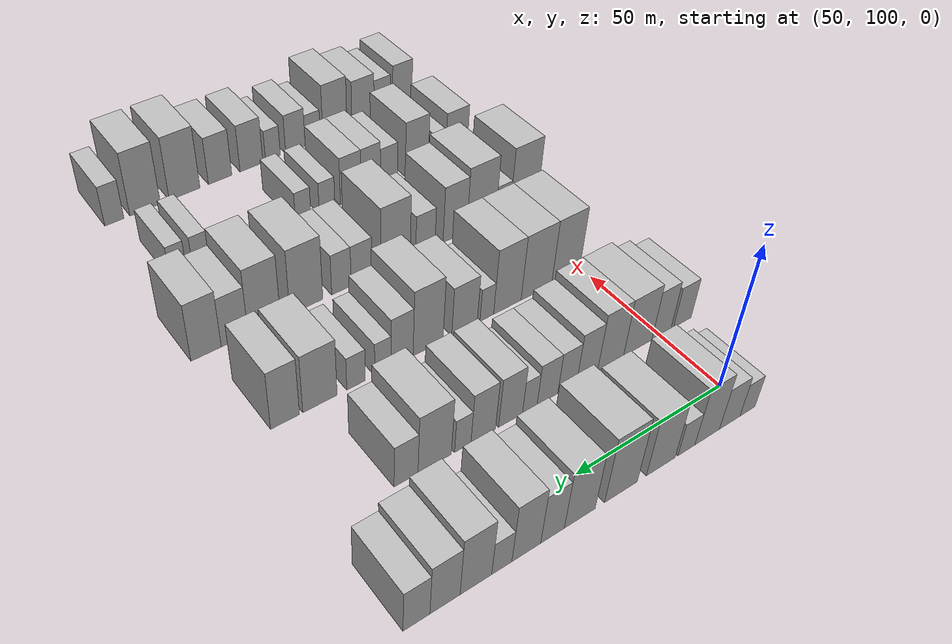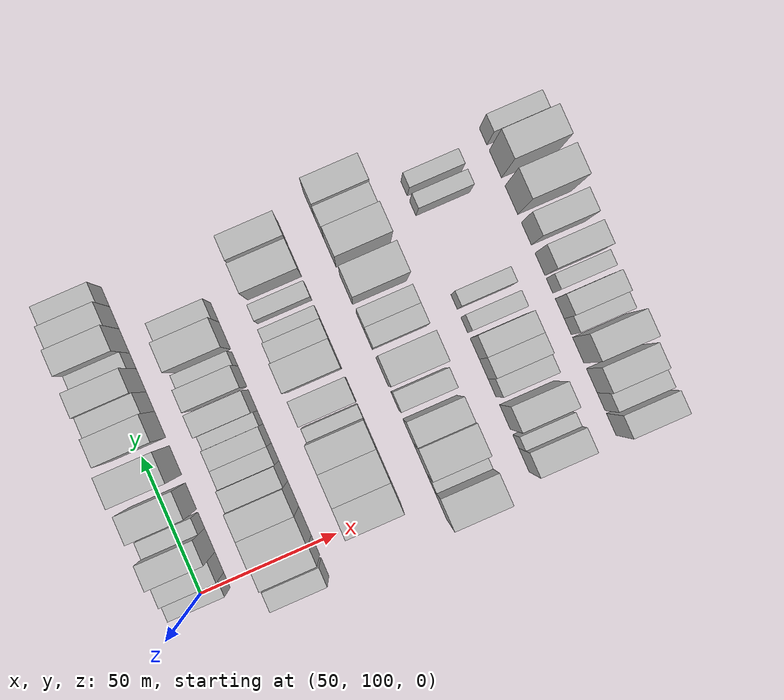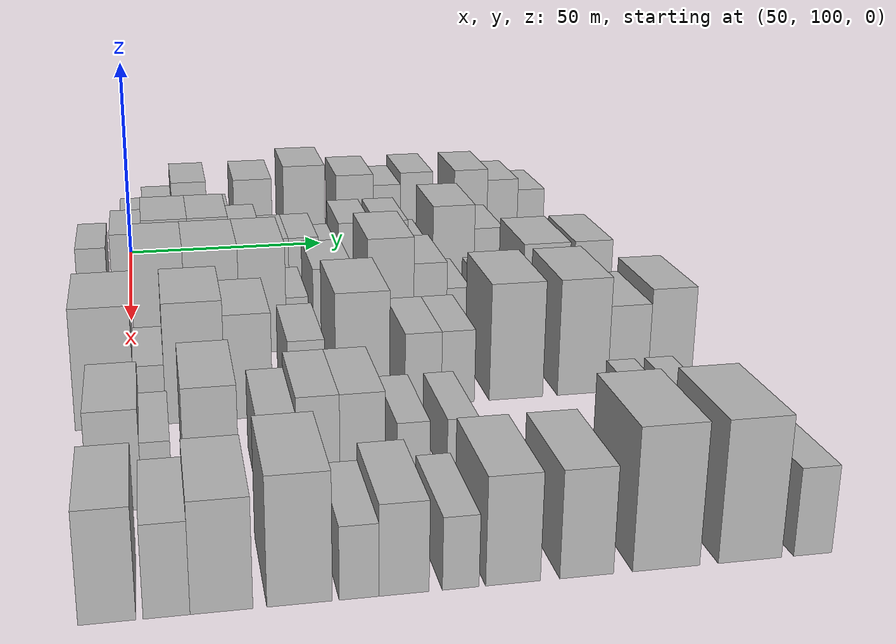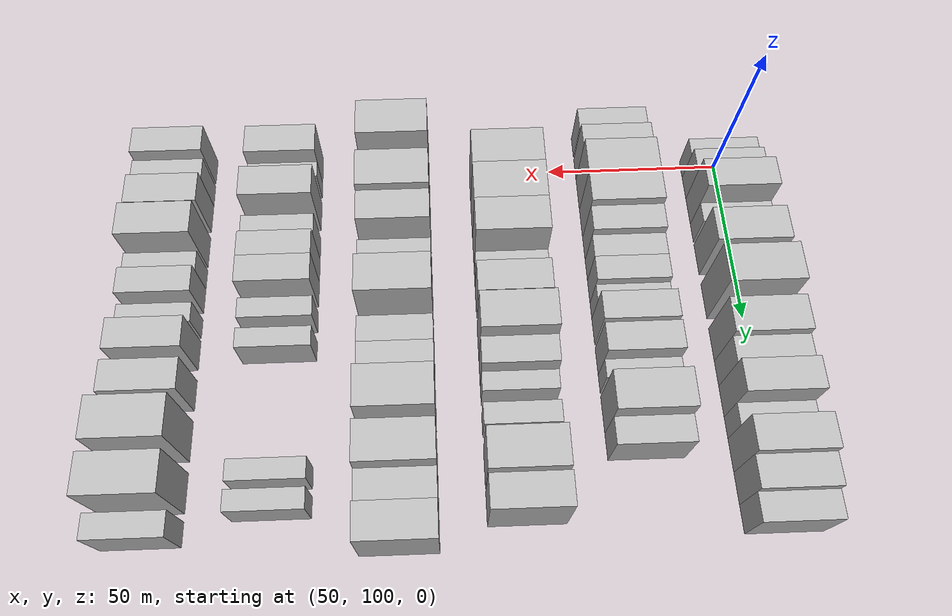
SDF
<sdf version="1.6">
 <world name="default">
  <model name="building_71">
   <static>1</static>
   <pose>50.0000 100.6009 0 0.000000 0.000000 0.000000</pose>
   <link name="link">
    <pose>0 0 6.00 0 0 0</pose>
    <collision name="collision"><geometry><box><size>20.0000 5.6024 12.0000</size></box></geometry></collision>
    <visual name="visual">
     <cast_shadows>0</cast_shadows>
     <geometry><box><size>20.0000 5.6024 12.0000</size></box></geometry>
     <material>
      <script>
       <uri>model://HANNAS_wall/materials/scripts</uri>
       <uri>model://HANNAS_wall/materials/textures</uri>
       <name>vrc/HANNAS_wall</name>
      </script>
     </material>
    </visual>
   </link>
  </model>
  <model name="building_72">
   <static>1</static>
   <pose>50.0000 107.1338 0 0.000000 0.000000 0.000000</pose>
   <link name="link">
    <pose>0 0 7.50 0 0 0</pose>
    <collision name="collision"><geometry><box><size>20.0000 7.4633 15.0000</size></box></geometry></collision>
    <visual name="visual">
     <cast_shadows>0</cast_shadows>
     <geometry><box><size>20.0000 7.4633 15.0000</size></box></geometry>
     <material>
      <script>
       <uri>model://HANNAS_wall/materials/scripts</uri>
       <uri>model://HANNAS_wall/materials/textures</uri>
       <name>vrc/HANNAS_wall</name>
      </script>
     </material>
    </visual>
   </link>
  </model>
  <model name="building_73">
   <static>1</static>
   <pose>50.0000 115.2234 0 0.000000 0.000000 0.000000</pose>
   <link name="link">
    <pose>0 0 10.50 0 0 0</pose>
    <collision name="collision"><geometry><box><size>20.0000 8.7159 21.0000</size></box></geometry></collision>
    <visual name="visual">
     <cast_shadows>0</cast_shadows>
     <geometry><box><size>20.0000 8.7159 21.0000</size></box></geometry>
     <material>
      <script>
       <uri>model://HANNAS_wall/materials/scripts</uri>
       <uri>model://HANNAS_wall/materials/textures</uri>
       <name>vrc/HANNAS_wall</name>
      </script>
     </material>
    </visual>
   </link>
  </model>
  <model name="building_74">
   <static>1</static>
   <pose>50.0000 122.5239 0 0.000000 0.000000 0.000000</pose>
   <link name="link">
    <pose>0 0 6.00 0 0 0</pose>
    <collision name="collision"><geometry><box><size>20.0000 5.8850 12.0000</size></box></geometry></collision>
    <visual name="visual">
     <cast_shadows>0</cast_shadows>
     <geometry><box><size>20.0000 5.8850 12.0000</size></box></geometry>
     <material>
      <script>
       <uri>model://HANNAS_wall/materials/scripts</uri>
       <uri>model://HANNAS_wall/materials/textures</uri>
       <name>vrc/HANNAS_wall</name>
      </script>
     </material>
    </visual>
   </link>
  </model>
  <model name="building_75">
   <static>1</static>
   <pose>50.0000 131.3342 0 0.000000 0.000000 0.000000</pose>
   <link name="link">
    <pose>0 0 10.50 0 0 0</pose>
    <collision name="collision"><geometry><box><size>20.0000 9.7356 21.0000</size></box></geometry></collision>
    <visual name="visual">
     <cast_shadows>0</cast_shadows>
     <geometry><box><size>20.0000 9.7356 21.0000</size></box></geometry>
     <material>
      <script>
       <uri>model://HANNAS_wall/materials/scripts</uri>
       <uri>model://HANNAS_wall/materials/textures</uri>
       <name>vrc/HANNAS_wall</name>
      </script>
     </material>
    </visual>
   </link>
  </model>
  <model name="building_76">
   <static>1</static>
   <pose>50.0000 144.5357 0 0.000000 0.000000 0.000000</pose>
   <link name="link">
    <pose>0 0 12.00 0 0 0</pose>
    <collision name="collision"><geometry><box><size>20.0000 10.6673 24.0000</size></box></geometry></collision>
    <visual name="visual">
     <cast_shadows>0</cast_shadows>
     <geometry><box><size>20.0000 10.6673 24.0000</size></box></geometry>
     <material>
      <script>
       <uri>model://HANNAS_wall/materials/scripts</uri>
       <uri>model://HANNAS_wall/materials/textures</uri>
       <name>vrc/HANNAS_wall</name>
      </script>
     </material>
    </visual>
   </link>
  </model>
  <model name="building_77">
   <static>1</static>
   <pose>50.0000 157.7000 0 0.000000 0.000000 0.000000</pose>
   <link name="link">
    <pose>0 0 10.50 0 0 0</pose>
    <collision name="collision"><geometry><box><size>20.0000 9.6613 21.0000</size></box></geometry></collision>
    <visual name="visual">
     <cast_shadows>0</cast_shadows>
     <geometry><box><size>20.0000 9.6613 21.0000</size></box></geometry>
     <material>
      <script>
       <uri>model://HANNAS_wall/materials/scripts</uri>
       <uri>model://HANNAS_wall/materials/textures</uri>
       <name>vrc/HANNAS_wall</name>
      </script>
     </material>
    </visual>
   </link>
  </model>
  <model name="building_78">
   <static>1</static>
   <pose>50.0000 166.1319 0 0.000000 0.000000 0.000000</pose>
   <link name="link">
    <pose>0 0 9.00 0 0 0</pose>
    <collision name="collision"><geometry><box><size>20.0000 7.2026 18.0000</size></box></geometry></collision>
    <visual name="visual">
     <cast_shadows>0</cast_shadows>
     <geometry><box><size>20.0000 7.2026 18.0000</size></box></geometry>
     <material>
      <script>
       <uri>model://HANNAS_wall/materials/scripts</uri>
       <uri>model://HANNAS_wall/materials/textures</uri>
       <name>vrc/HANNAS_wall</name>
      </script>
     </material>
    </visual>
   </link>
  </model>
  <model name="building_79">
   <static>1</static>
   <pose>50.0000 174.0043 0 0.000000 0.000000 0.000000</pose>
   <link name="link">
    <pose>0 0 10.50 0 0 0</pose>
    <collision name="collision"><geometry><box><size>20.0000 8.5422 21.0000</size></box></geometry></collision>
    <visual name="visual">
     <cast_shadows>0</cast_shadows>
     <geometry><box><size>20.0000 8.5422 21.0000</size></box></geometry>
     <material>
      <script>
       <uri>model://HANNAS_wall/materials/scripts</uri>
       <uri>model://HANNAS_wall/materials/textures</uri>
       <name>vrc/HANNAS_wall</name>
      </script>
     </material>
    </visual>
   </link>
  </model>
  <model name="building_80">
   <static>1</static>
   <pose>50.0000 181.2008 0 0.000000 0.000000 0.000000</pose>
   <link name="link">
    <pose>0 0 6.00 0 0 0</pose>
    <collision name="collision"><geometry><box><size>20.0000 5.8506 12.0000</size></box></geometry></collision>
    <visual name="visual">
     <cast_shadows>0</cast_shadows>
     <geometry><box><size>20.0000 5.8506 12.0000</size></box></geometry>
     <material>
      <script>
       <uri>model://HANNAS_wall/materials/scripts</uri>
       <uri>model://HANNAS_wall/materials/textures</uri>
       <name>vrc/HANNAS_wall</name>
      </script>
     </material>
    </visual>
   </link>
  </model>
  <model name="building_81">
   <static>1</static>
   <pose>50.0000 188.6041 0 0.000000 0.000000 0.000000</pose>
   <link name="link">
    <pose>0 0 10.50 0 0 0</pose>
    <collision name="collision"><geometry><box><size>20.0000 8.9559 21.0000</size></box></geometry></collision>
    <visual name="visual">
     <cast_shadows>0</cast_shadows>
     <geometry><box><size>20.0000 8.9559 21.0000</size></box></geometry>
     <material>
      <script>
       <uri>model://HANNAS_wall/materials/scripts</uri>
       <uri>model://HANNAS_wall/materials/textures</uri>
       <name>vrc/HANNAS_wall</name>
      </script>
     </material>
    </visual>
   </link>
  </model>
  <model name="building_82">
   <static>1</static>
   <pose>50.0000 197.2215 0 0.000000 0.000000 0.000000</pose>
   <link name="link">
    <pose>0 0 9.00 0 0 0</pose>
    <collision name="collision"><geometry><box><size>20.0000 8.2790 18.0000</size></box></geometry></collision>
    <visual name="visual">
     <cast_shadows>0</cast_shadows>
     <geometry><box><size>20.0000 8.2790 18.0000</size></box></geometry>
     <material>
      <script>
       <uri>model://HANNAS_wall/materials/scripts</uri>
       <uri>model://HANNAS_wall/materials/textures</uri>
       <name>vrc/HANNAS_wall</name>
      </script>
     </material>
    </visual>
   </link>
  </model>
  <model name="building_83">
   <static>1</static>
   <pose>50.0000 204.9760 0 0.000000 0.000000 0.000000</pose>
   <link name="link">
    <pose>0 0 7.50 0 0 0</pose>
    <collision name="collision"><geometry><box><size>20.0000 7.2300 15.0000</size></box></geometry></collision>
    <visual name="visual">
     <cast_shadows>0</cast_shadows>
     <geometry><box><size>20.0000 7.2300 15.0000</size></box></geometry>
     <material>
      <script>
       <uri>model://HANNAS_wall/materials/scripts</uri>
       <uri>model://HANNAS_wall/materials/textures</uri>
       <name>vrc/HANNAS_wall</name>
      </script>
     </material>
    </visual>
   </link>
  </model>
  <model name="building_190">
   <static>1</static>
   <pose>82.0000 91.4594 0 0.000000 0.000000 0.000000</pose>
   <link name="link">
    <pose>0 0 7.50 0 0 0</pose>
    <collision name="collision"><geometry><box><size>20.0000 6.8275 15.0000</size></box></geometry></collision>
    <visual name="visual">
     <cast_shadows>0</cast_shadows>
     <geometry><box><size>20.0000 6.8275 15.0000</size></box></geometry>
     <material>
      <script>
       <uri>model://HANNAS_wall/materials/scripts</uri>
       <uri>model://HANNAS_wall/materials/textures</uri>
       <name>vrc/HANNAS_wall</name>
      </script>
     </material>
    </visual>
   </link>
  </model>
  <model name="building_191">
   <static>1</static>
   <pose>82.0000 99.4900 0 0.000000 0.000000 0.000000</pose>
   <link name="link">
    <pose>0 0 9.00 0 0 0</pose>
    <collision name="collision"><geometry><box><size>20.0000 7.2338 18.0000</size></box></geometry></collision>
    <visual name="visual">
     <cast_shadows>0</cast_shadows>
     <geometry><box><size>20.0000 7.2338 18.0000</size></box></geometry>
     <material>
      <script>
       <uri>model://HANNAS_wall/materials/scripts</uri>
       <uri>model://HANNAS_wall/materials/textures</uri>
       <name>vrc/HANNAS_wall</name>
      </script>
     </material>
    </visual>
   </link>
  </model>
  <model name="building_192">
   <static>1</static>
   <pose>82.0000 108.3492 0 0.000000 0.000000 0.000000</pose>
   <link name="link">
    <pose>0 0 10.50 0 0 0</pose>
    <collision name="collision"><geometry><box><size>20.0000 10.4845 21.0000</size></box></geometry></collision>
    <visual name="visual">
     <cast_shadows>0</cast_shadows>
     <geometry><box><size>20.0000 10.4845 21.0000</size></box></geometry>
     <material>
      <script>
       <uri>model://HANNAS_wall/materials/scripts</uri>
       <uri>model://HANNAS_wall/materials/textures</uri>
       <name>vrc/HANNAS_wall</name>
      </script>
     </material>
    </visual>
   </link>
  </model>
  <model name="building_193">
   <static>1</static>
   <pose>82.0000 118.2571 0 0.000000 0.000000 0.000000</pose>
   <link name="link">
    <pose>0 0 10.50 0 0 0</pose>
    <collision name="collision"><geometry><box><size>20.0000 9.3312 21.0000</size></box></geometry></collision>
    <visual name="visual">
     <cast_shadows>0</cast_shadows>
     <geometry><box><size>20.0000 9.3312 21.0000</size></box></geometry>
     <material>
      <script>
       <uri>model://HANNAS_wall/materials/scripts</uri>
       <uri>model://HANNAS_wall/materials/textures</uri>
       <name>vrc/HANNAS_wall</name>
      </script>
     </material>
    </visual>
   </link>
  </model>
  <model name="building_194">
   <static>1</static>
   <pose>82.0000 126.6278 0 0.000000 0.000000 0.000000</pose>
   <link name="link">
    <pose>0 0 9.00 0 0 0</pose>
    <collision name="collision"><geometry><box><size>20.0000 7.4101 18.0000</size></box></geometry></collision>
    <visual name="visual">
     <cast_shadows>0</cast_shadows>
     <geometry><box><size>20.0000 7.4101 18.0000</size></box></geometry>
     <material>
      <script>
       <uri>model://HANNAS_wall/materials/scripts</uri>
       <uri>model://HANNAS_wall/materials/textures</uri>
       <name>vrc/HANNAS_wall</name>
      </script>
     </material>
    </visual>
   </link>
  </model>
  <model name="building_195">
   <static>1</static>
   <pose>82.0000 133.6002 0 0.000000 0.000000 0.000000</pose>
   <link name="link">
    <pose>0 0 7.50 0 0 0</pose>
    <collision name="collision"><geometry><box><size>20.0000 6.5347 15.0000</size></box></geometry></collision>
    <visual name="visual">
     <cast_shadows>0</cast_shadows>
     <geometry><box><size>20.0000 6.5347 15.0000</size></box></geometry>
     <material>
      <script>
       <uri>model://HANNAS_wall/materials/scripts</uri>
       <uri>model://HANNAS_wall/materials/textures</uri>
       <name>vrc/HANNAS_wall</name>
      </script>
     </material>
    </visual>
   </link>
  </model>
  <model name="building_196">
   <static>1</static>
   <pose>82.0000 140.3643 0 0.000000 0.000000 0.000000</pose>
   <link name="link">
    <pose>0 0 7.50 0 0 0</pose>
    <collision name="collision"><geometry><box><size>20.0000 6.9936 15.0000</size></box></geometry></collision>
    <visual name="visual">
     <cast_shadows>0</cast_shadows>
     <geometry><box><size>20.0000 6.9936 15.0000</size></box></geometry>
     <material>
      <script>
       <uri>model://HANNAS_wall/materials/scripts</uri>
       <uri>model://HANNAS_wall/materials/textures</uri>
       <name>vrc/HANNAS_wall</name>
      </script>
     </material>
    </visual>
   </link>
  </model>
  <model name="building_197">
   <static>1</static>
   <pose>82.0000 146.3003 0 0.000000 0.000000 0.000000</pose>
   <link name="link">
    <pose>0 0 6.00 0 0 0</pose>
    <collision name="collision"><geometry><box><size>20.0000 4.8784 12.0000</size></box></geometry></collision>
    <visual name="visual">
     <cast_shadows>0</cast_shadows>
     <geometry><box><size>20.0000 4.8784 12.0000</size></box></geometry>
     <material>
      <script>
       <uri>model://HANNAS_wall/materials/scripts</uri>
       <uri>model://HANNAS_wall/materials/textures</uri>
       <name>vrc/HANNAS_wall</name>
      </script>
     </material>
    </visual>
   </link>
  </model>
  <model name="building_198">
   <static>1</static>
   <pose>82.0000 152.6381 0 0.000000 0.000000 0.000000</pose>
   <link name="link">
    <pose>0 0 9.00 0 0 0</pose>
    <collision name="collision"><geometry><box><size>20.0000 7.7972 18.0000</size></box></geometry></collision>
    <visual name="visual">
     <cast_shadows>0</cast_shadows>
     <geometry><box><size>20.0000 7.7972 18.0000</size></box></geometry>
     <material>
      <script>
       <uri>model://HANNAS_wall/materials/scripts</uri>
       <uri>model://HANNAS_wall/materials/textures</uri>
       <name>vrc/HANNAS_wall</name>
      </script>
     </material>
    </visual>
   </link>
  </model>
  <model name="building_199">
   <static>1</static>
   <pose>82.0000 161.4354 0 0.000000 0.000000 0.000000</pose>
   <link name="link">
    <pose>0 0 9.00 0 0 0</pose>
    <collision name="collision"><geometry><box><size>20.0000 7.7974 18.0000</size></box></geometry></collision>
    <visual name="visual">
     <cast_shadows>0</cast_shadows>
     <geometry><box><size>20.0000 7.7974 18.0000</size></box></geometry>
     <material>
      <script>
       <uri>model://HANNAS_wall/materials/scripts</uri>
       <uri>model://HANNAS_wall/materials/textures</uri>
       <name>vrc/HANNAS_wall</name>
      </script>
     </material>
    </visual>
   </link>
  </model>
  <model name="building_200">
   <static>1</static>
   <pose>82.0000 167.8939 0 0.000000 0.000000 0.000000</pose>
   <link name="link">
    <pose>0 0 6.00 0 0 0</pose>
    <collision name="collision"><geometry><box><size>20.0000 5.1197 12.0000</size></box></geometry></collision>
    <visual name="visual">
     <cast_shadows>0</cast_shadows>
     <geometry><box><size>20.0000 5.1197 12.0000</size></box></geometry>
     <material>
      <script>
       <uri>model://HANNAS_wall/materials/scripts</uri>
       <uri>model://HANNAS_wall/materials/textures</uri>
       <name>vrc/HANNAS_wall</name>
      </script>
     </material>
    </visual>
   </link>
  </model>
  <model name="building_201">
   <static>1</static>
   <pose>82.0000 176.5386 0 0.000000 0.000000 0.000000</pose>
   <link name="link">
    <pose>0 0 10.50 0 0 0</pose>
    <collision name="collision"><geometry><box><size>20.0000 10.1697 21.0000</size></box></geometry></collision>
    <visual name="visual">
     <cast_shadows>0</cast_shadows>
     <geometry><box><size>20.0000 10.1697 21.0000</size></box></geometry>
     <material>
      <script>
       <uri>model://HANNAS_wall/materials/scripts</uri>
       <uri>model://HANNAS_wall/materials/textures</uri>
       <name>vrc/HANNAS_wall</name>
      </script>
     </material>
    </visual>
   </link>
  </model>
  <model name="building_202">
   <static>1</static>
   <pose>82.0000 185.1774 0 0.000000 0.000000 0.000000</pose>
   <link name="link">
    <pose>0 0 7.50 0 0 0</pose>
    <collision name="collision"><geometry><box><size>20.0000 7.1079 15.0000</size></box></geometry></collision>
    <visual name="visual">
     <cast_shadows>0</cast_shadows>
     <geometry><box><size>20.0000 7.1079 15.0000</size></box></geometry>
     <material>
      <script>
       <uri>model://HANNAS_wall/materials/scripts</uri>
       <uri>model://HANNAS_wall/materials/textures</uri>
       <name>vrc/HANNAS_wall</name>
      </script>
     </material>
    </visual>
   </link>
  </model>
  <model name="building_306">
   <static>1</static>
   <pose>114.0000 106.1458 0 0.000000 0.000000 0.000000</pose>
   <link name="link">
    <pose>0 0 12.00 0 0 0</pose>
    <collision name="collision"><geometry><box><size>20.0000 10.6292 24.0000</size></box></geometry></collision>
    <visual name="visual">
     <cast_shadows>0</cast_shadows>
     <geometry><box><size>20.0000 10.6292 24.0000</size></box></geometry>
     <material>
      <script>
       <uri>model://HANNAS_wall/materials/scripts</uri>
       <uri>model://HANNAS_wall/materials/textures</uri>
       <name>vrc/HANNAS_wall</name>
      </script>
     </material>
    </visual>
   </link>
  </model>
  <model name="building_307">
   <static>1</static>
   <pose>114.0000 117.1269 0 0.000000 0.000000 0.000000</pose>
   <link name="link">
    <pose>0 0 12.00 0 0 0</pose>
    <collision name="collision"><geometry><box><size>20.0000 11.3330 24.0000</size></box></geometry></collision>
    <visual name="visual">
     <cast_shadows>0</cast_shadows>
     <geometry><box><size>20.0000 11.3330 24.0000</size></box></geometry>
     <material>
      <script>
       <uri>model://HANNAS_wall/materials/scripts</uri>
       <uri>model://HANNAS_wall/materials/textures</uri>
       <name>vrc/HANNAS_wall</name>
      </script>
     </material>
    </visual>
   </link>
  </model>
  <model name="building_308">
   <static>1</static>
   <pose>114.0000 127.7362 0 0.000000 0.000000 0.000000</pose>
   <link name="link">
    <pose>0 0 12.00 0 0 0</pose>
    <collision name="collision"><geometry><box><size>20.0000 9.8856 24.0000</size></box></geometry></collision>
    <visual name="visual">
     <cast_shadows>0</cast_shadows>
     <geometry><box><size>20.0000 9.8856 24.0000</size></box></geometry>
     <material>
      <script>
       <uri>model://HANNAS_wall/materials/scripts</uri>
       <uri>model://HANNAS_wall/materials/textures</uri>
       <name>vrc/HANNAS_wall</name>
      </script>
     </material>
    </visual>
   </link>
  </model>
  <model name="building_309">
   <static>1</static>
   <pose>114.0000 135.0831 0 0.000000 0.000000 0.000000</pose>
   <link name="link">
    <pose>0 0 6.00 0 0 0</pose>
    <collision name="collision"><geometry><box><size>20.0000 4.8083 12.0000</size></box></geometry></collision>
    <visual name="visual">
     <cast_shadows>0</cast_shadows>
     <geometry><box><size>20.0000 4.8083 12.0000</size></box></geometry>
     <material>
      <script>
       <uri>model://HANNAS_wall/materials/scripts</uri>
       <uri>model://HANNAS_wall/materials/textures</uri>
       <name>vrc/HANNAS_wall</name>
      </script>
     </material>
    </visual>
   </link>
  </model>
  <model name="building_310">
   <static>1</static>
   <pose>114.0000 142.8779 0 0.000000 0.000000 0.000000</pose>
   <link name="link">
    <pose>0 0 9.00 0 0 0</pose>
    <collision name="collision"><geometry><box><size>20.0000 8.7814 18.0000</size></box></geometry></collision>
    <visual name="visual">
     <cast_shadows>0</cast_shadows>
     <geometry><box><size>20.0000 8.7814 18.0000</size></box></geometry>
     <material>
      <script>
       <uri>model://HANNAS_wall/materials/scripts</uri>
       <uri>model://HANNAS_wall/materials/textures</uri>
       <name>vrc/HANNAS_wall</name>
      </script>
     </material>
    </visual>
   </link>
  </model>
  <model name="building_311">
   <static>1</static>
   <pose>114.0000 155.2763 0 0.000000 0.000000 0.000000</pose>
   <link name="link">
    <pose>0 0 12.00 0 0 0</pose>
    <collision name="collision"><geometry><box><size>20.0000 10.0153 24.0000</size></box></geometry></collision>
    <visual name="visual">
     <cast_shadows>0</cast_shadows>
     <geometry><box><size>20.0000 10.0153 24.0000</size></box></geometry>
     <material>
      <script>
       <uri>model://HANNAS_wall/materials/scripts</uri>
       <uri>model://HANNAS_wall/materials/textures</uri>
       <name>vrc/HANNAS_wall</name>
      </script>
     </material>
    </visual>
   </link>
  </model>
  <model name="building_312">
   <static>1</static>
   <pose>114.0000 163.9210 0 0.000000 0.000000 0.000000</pose>
   <link name="link">
    <pose>0 0 9.00 0 0 0</pose>
    <collision name="collision"><geometry><box><size>20.0000 7.2742 18.0000</size></box></geometry></collision>
    <visual name="visual">
     <cast_shadows>0</cast_shadows>
     <geometry><box><size>20.0000 7.2742 18.0000</size></box></geometry>
     <material>
      <script>
       <uri>model://HANNAS_wall/materials/scripts</uri>
       <uri>model://HANNAS_wall/materials/textures</uri>
       <name>vrc/HANNAS_wall</name>
      </script>
     </material>
    </visual>
   </link>
  </model>
  <model name="building_313">
   <static>1</static>
   <pose>114.0000 170.1475 0 0.000000 0.000000 0.000000</pose>
   <link name="link">
    <pose>0 0 6.00 0 0 0</pose>
    <collision name="collision"><geometry><box><size>20.0000 5.1786 12.0000</size></box></geometry></collision>
    <visual name="visual">
     <cast_shadows>0</cast_shadows>
     <geometry><box><size>20.0000 5.1786 12.0000</size></box></geometry>
     <material>
      <script>
       <uri>model://HANNAS_wall/materials/scripts</uri>
       <uri>model://HANNAS_wall/materials/textures</uri>
       <name>vrc/HANNAS_wall</name>
      </script>
     </material>
    </visual>
   </link>
  </model>
  <model name="building_314">
   <static>1</static>
   <pose>114.0000 178.6363 0 0.000000 0.000000 0.000000</pose>
   <link name="link">
    <pose>0 0 6.00 0 0 0</pose>
    <collision name="collision"><geometry><box><size>20.0000 5.7990 12.0000</size></box></geometry></collision>
    <visual name="visual">
     <cast_shadows>0</cast_shadows>
     <geometry><box><size>20.0000 5.7990 12.0000</size></box></geometry>
     <material>
      <script>
       <uri>model://HANNAS_wall/materials/scripts</uri>
       <uri>model://HANNAS_wall/materials/textures</uri>
       <name>vrc/HANNAS_wall</name>
      </script>
     </material>
    </visual>
   </link>
  </model>
  <model name="building_315">
   <static>1</static>
   <pose>114.0000 189.7423 0 0.000000 0.000000 0.000000</pose>
   <link name="link">
    <pose>0 0 10.50 0 0 0</pose>
    <collision name="collision"><geometry><box><size>20.0000 10.4129 21.0000</size></box></geometry></collision>
    <visual name="visual">
     <cast_shadows>0</cast_shadows>
     <geometry><box><size>20.0000 10.4129 21.0000</size></box></geometry>
     <material>
      <script>
       <uri>model://HANNAS_wall/materials/scripts</uri>
       <uri>model://HANNAS_wall/materials/textures</uri>
       <name>vrc/HANNAS_wall</name>
      </script>
     </material>
    </visual>
   </link>
  </model>
  <model name="building_316">
   <static>1</static>
   <pose>114.0000 200.2084 0 0.000000 0.000000 0.000000</pose>
   <link name="link">
    <pose>0 0 10.50 0 0 0</pose>
    <collision name="collision"><geometry><box><size>20.0000 8.5194 21.0000</size></box></geometry></collision>
    <visual name="visual">
     <cast_shadows>0</cast_shadows>
     <geometry><box><size>20.0000 8.5194 21.0000</size></box></geometry>
     <material>
      <script>
       <uri>model://HANNAS_wall/materials/scripts</uri>
       <uri>model://HANNAS_wall/materials/textures</uri>
       <name>vrc/HANNAS_wall</name>
      </script>
     </material>
    </visual>
   </link>
  </model>
  <model name="building_422">
   <static>1</static>
   <pose>146.0000 95.2170 0 0.000000 0.000000 0.000000</pose>
   <link name="link">
    <pose>0 0 12.00 0 0 0</pose>
    <collision name="collision"><geometry><box><size>20.0000 11.0625 24.0000</size></box></geometry></collision>
    <visual name="visual">
     <cast_shadows>0</cast_shadows>
     <geometry><box><size>20.0000 11.0625 24.0000</size></box></geometry>
     <material>
      <script>
       <uri>model://HANNAS_wall/materials/scripts</uri>
       <uri>model://HANNAS_wall/materials/textures</uri>
       <name>vrc/HANNAS_wall</name>
      </script>
     </material>
    </visual>
   </link>
  </model>
  <model name="building_423">
   <static>1</static>
   <pose>146.0000 103.5829 0 0.000000 0.000000 0.000000</pose>
   <link name="link">
    <pose>0 0 6.00 0 0 0</pose>
    <collision name="collision"><geometry><box><size>20.0000 5.6692 12.0000</size></box></geometry></collision>
    <visual name="visual">
     <cast_shadows>0</cast_shadows>
     <geometry><box><size>20.0000 5.6692 12.0000</size></box></geometry>
     <material>
      <script>
       <uri>model://HANNAS_wall/materials/scripts</uri>
       <uri>model://HANNAS_wall/materials/textures</uri>
       <name>vrc/HANNAS_wall</name>
      </script>
     </material>
    </visual>
   </link>
  </model>
  <model name="building_424">
   <static>1</static>
   <pose>146.0000 111.9837 0 0.000000 0.000000 0.000000</pose>
   <link name="link">
    <pose>0 0 12.00 0 0 0</pose>
    <collision name="collision"><geometry><box><size>20.0000 11.1325 24.0000</size></box></geometry></collision>
    <visual name="visual">
     <cast_shadows>0</cast_shadows>
     <geometry><box><size>20.0000 11.1325 24.0000</size></box></geometry>
     <material>
      <script>
       <uri>model://HANNAS_wall/materials/scripts</uri>
       <uri>model://HANNAS_wall/materials/textures</uri>
       <name>vrc/HANNAS_wall</name>
      </script>
     </material>
    </visual>
   </link>
  </model>
  <model name="building_425">
   <static>1</static>
   <pose>146.0000 122.0173 0 0.000000 0.000000 0.000000</pose>
   <link name="link">
    <pose>0 0 10.50 0 0 0</pose>
    <collision name="collision"><geometry><box><size>20.0000 8.9346 21.0000</size></box></geometry></collision>
    <visual name="visual">
     <cast_shadows>0</cast_shadows>
     <geometry><box><size>20.0000 8.9346 21.0000</size></box></geometry>
     <material>
      <script>
       <uri>model://HANNAS_wall/materials/scripts</uri>
       <uri>model://HANNAS_wall/materials/textures</uri>
       <name>vrc/HANNAS_wall</name>
      </script>
     </material>
    </visual>
   </link>
  </model>
  <model name="building_426">
   <static>1</static>
   <pose>146.0000 133.0212 0 0.000000 0.000000 0.000000</pose>
   <link name="link">
    <pose>0 0 7.50 0 0 0</pose>
    <collision name="collision"><geometry><box><size>20.0000 7.0734 15.0000</size></box></geometry></collision>
    <visual name="visual">
     <cast_shadows>0</cast_shadows>
     <geometry><box><size>20.0000 7.0734 15.0000</size></box></geometry>
     <material>
      <script>
       <uri>model://HANNAS_wall/materials/scripts</uri>
       <uri>model://HANNAS_wall/materials/textures</uri>
       <name>vrc/HANNAS_wall</name>
      </script>
     </material>
    </visual>
   </link>
  </model>
  <model name="building_427">
   <static>1</static>
   <pose>146.0000 143.8154 0 0.000000 0.000000 0.000000</pose>
   <link name="link">
    <pose>0 0 12.00 0 0 0</pose>
    <collision name="collision"><geometry><box><size>20.0000 10.5149 24.0000</size></box></geometry></collision>
    <visual name="visual">
     <cast_shadows>0</cast_shadows>
     <geometry><box><size>20.0000 10.5149 24.0000</size></box></geometry>
     <material>
      <script>
       <uri>model://HANNAS_wall/materials/scripts</uri>
       <uri>model://HANNAS_wall/materials/textures</uri>
       <name>vrc/HANNAS_wall</name>
      </script>
     </material>
    </visual>
   </link>
  </model>
  <model name="building_428">
   <static>1</static>
   <pose>146.0000 155.6771 0 0.000000 0.000000 0.000000</pose>
   <link name="link">
    <pose>0 0 7.50 0 0 0</pose>
    <collision name="collision"><geometry><box><size>20.0000 7.2086 15.0000</size></box></geometry></collision>
    <visual name="visual">
     <cast_shadows>0</cast_shadows>
     <geometry><box><size>20.0000 7.2086 15.0000</size></box></geometry>
     <material>
      <script>
       <uri>model://HANNAS_wall/materials/scripts</uri>
       <uri>model://HANNAS_wall/materials/textures</uri>
       <name>vrc/HANNAS_wall</name>
      </script>
     </material>
    </visual>
   </link>
  </model>
  <model name="building_429">
   <static>1</static>
   <pose>146.0000 162.5723 0 0.000000 0.000000 0.000000</pose>
   <link name="link">
    <pose>0 0 7.50 0 0 0</pose>
    <collision name="collision"><geometry><box><size>20.0000 6.5818 15.0000</size></box></geometry></collision>
    <visual name="visual">
     <cast_shadows>0</cast_shadows>
     <geometry><box><size>20.0000 6.5818 15.0000</size></box></geometry>
     <material>
      <script>
       <uri>model://HANNAS_wall/materials/scripts</uri>
       <uri>model://HANNAS_wall/materials/textures</uri>
       <name>vrc/HANNAS_wall</name>
      </script>
     </material>
    </visual>
   </link>
  </model>
  <model name="building_430">
   <static>1</static>
   <pose>146.0000 174.2739 0 0.000000 0.000000 0.000000</pose>
   <link name="link">
    <pose>0 0 12.00 0 0 0</pose>
    <collision name="collision"><geometry><box><size>20.0000 10.8213 24.0000</size></box></geometry></collision>
    <visual name="visual">
     <cast_shadows>0</cast_shadows>
     <geometry><box><size>20.0000 10.8213 24.0000</size></box></geometry>
     <material>
      <script>
       <uri>model://HANNAS_wall/materials/scripts</uri>
       <uri>model://HANNAS_wall/materials/textures</uri>
       <name>vrc/HANNAS_wall</name>
      </script>
     </material>
    </visual>
   </link>
  </model>
  <model name="building_431">
   <static>1</static>
   <pose>146.0000 187.8414 0 0.000000 0.000000 0.000000</pose>
   <link name="link">
    <pose>0 0 12.00 0 0 0</pose>
    <collision name="collision"><geometry><box><size>20.0000 10.3137 24.0000</size></box></geometry></collision>
    <visual name="visual">
     <cast_shadows>0</cast_shadows>
     <geometry><box><size>20.0000 10.3137 24.0000</size></box></geometry>
     <material>
      <script>
       <uri>model://HANNAS_wall/materials/scripts</uri>
       <uri>model://HANNAS_wall/materials/textures</uri>
       <name>vrc/HANNAS_wall</name>
      </script>
     </material>
    </visual>
   </link>
  </model>
  <model name="building_432">
   <static>1</static>
   <pose>146.0000 197.1525 0 0.000000 0.000000 0.000000</pose>
   <link name="link">
    <pose>0 0 9.00 0 0 0</pose>
    <collision name="collision"><geometry><box><size>20.0000 8.3085 18.0000</size></box></geometry></collision>
    <visual name="visual">
     <cast_shadows>0</cast_shadows>
     <geometry><box><size>20.0000 8.3085 18.0000</size></box></geometry>
     <material>
      <script>
       <uri>model://HANNAS_wall/materials/scripts</uri>
       <uri>model://HANNAS_wall/materials/textures</uri>
       <name>vrc/HANNAS_wall</name>
      </script>
     </material>
    </visual>
   </link>
  </model>
  <model name="building_433">
   <static>1</static>
   <pose>146.0000 205.9020 0 0.000000 0.000000 0.000000</pose>
   <link name="link">
    <pose>0 0 10.50 0 0 0</pose>
    <collision name="collision"><geometry><box><size>20.0000 9.1905 21.0000</size></box></geometry></collision>
    <visual name="visual">
     <cast_shadows>0</cast_shadows>
     <geometry><box><size>20.0000 9.1905 21.0000</size></box></geometry>
     <material>
      <script>
       <uri>model://HANNAS_wall/materials/scripts</uri>
       <uri>model://HANNAS_wall/materials/textures</uri>
       <name>vrc/HANNAS_wall</name>
      </script>
     </material>
    </visual>
   </link>
  </model>
  <model name="building_542">
   <static>1</static>
   <pose>178.0000 97.3175 0 0.000000 0.000000 0.000000</pose>
   <link name="link">
    <pose>0 0 9.00 0 0 0</pose>
    <collision name="collision"><geometry><box><size>20.0000 8.7670 18.0000</size></box></geometry></collision>
    <visual name="visual">
     <cast_shadows>0</cast_shadows>
     <geometry><box><size>20.0000 8.7670 18.0000</size></box></geometry>
     <material>
      <script>
       <uri>model://HANNAS_wall/materials/scripts</uri>
       <uri>model://HANNAS_wall/materials/textures</uri>
       <name>vrc/HANNAS_wall</name>
      </script>
     </material>
    </visual>
   </link>
  </model>
  <model name="building_543">
   <static>1</static>
   <pose>178.0000 104.1926 0 0.000000 0.000000 0.000000</pose>
   <link name="link">
    <pose>0 0 6.00 0 0 0</pose>
    <collision name="collision"><geometry><box><size>20.0000 4.9834 12.0000</size></box></geometry></collision>
    <visual name="visual">
     <cast_shadows>0</cast_shadows>
     <geometry><box><size>20.0000 4.9834 12.0000</size></box></geometry>
     <material>
      <script>
       <uri>model://HANNAS_wall/materials/scripts</uri>
       <uri>model://HANNAS_wall/materials/textures</uri>
       <name>vrc/HANNAS_wall</name>
      </script>
     </material>
    </visual>
   </link>
  </model>
  <model name="building_544">
   <static>1</static>
   <pose>178.0000 113.2080 0 0.000000 0.000000 0.000000</pose>
   <link name="link">
    <pose>0 0 10.50 0 0 0</pose>
    <collision name="collision"><geometry><box><size>20.0000 9.0475 21.0000</size></box></geometry></collision>
    <visual name="visual">
     <cast_shadows>0</cast_shadows>
     <geometry><box><size>20.0000 9.0475 21.0000</size></box></geometry>
     <material>
      <script>
       <uri>model://HANNAS_wall/materials/scripts</uri>
       <uri>model://HANNAS_wall/materials/textures</uri>
       <name>vrc/HANNAS_wall</name>
      </script>
     </material>
    </visual>
   </link>
  </model>
  <model name="building_545">
   <static>1</static>
   <pose>178.0000 124.0240 0 0.000000 0.000000 0.000000</pose>
   <link name="link">
    <pose>0 0 7.50 0 0 0</pose>
    <collision name="collision"><geometry><box><size>20.0000 6.5846 15.0000</size></box></geometry></collision>
    <visual name="visual">
     <cast_shadows>0</cast_shadows>
     <geometry><box><size>20.0000 6.5846 15.0000</size></box></geometry>
     <material>
      <script>
       <uri>model://HANNAS_wall/materials/scripts</uri>
       <uri>model://HANNAS_wall/materials/textures</uri>
       <name>vrc/HANNAS_wall</name>
      </script>
     </material>
    </visual>
   </link>
  </model>
  <model name="building_546">
   <static>1</static>
   <pose>178.0000 130.9613 0 0.000000 0.000000 0.000000</pose>
   <link name="link">
    <pose>0 0 9.00 0 0 0</pose>
    <collision name="collision"><geometry><box><size>20.0000 7.2899 18.0000</size></box></geometry></collision>
    <visual name="visual">
     <cast_shadows>0</cast_shadows>
     <geometry><box><size>20.0000 7.2899 18.0000</size></box></geometry>
     <material>
      <script>
       <uri>model://HANNAS_wall/materials/scripts</uri>
       <uri>model://HANNAS_wall/materials/textures</uri>
       <name>vrc/HANNAS_wall</name>
      </script>
     </material>
    </visual>
   </link>
  </model>
  <model name="building_547">
   <static>1</static>
   <pose>178.0000 138.4705 0 0.000000 0.000000 0.000000</pose>
   <link name="link">
    <pose>0 0 9.00 0 0 0</pose>
    <collision name="collision"><geometry><box><size>20.0000 7.7286 18.0000</size></box></geometry></collision>
    <visual name="visual">
     <cast_shadows>0</cast_shadows>
     <geometry><box><size>20.0000 7.7286 18.0000</size></box></geometry>
     <material>
      <script>
       <uri>model://HANNAS_wall/materials/scripts</uri>
       <uri>model://HANNAS_wall/materials/textures</uri>
       <name>vrc/HANNAS_wall</name>
      </script>
     </material>
    </visual>
   </link>
  </model>
  <model name="building_548">
   <static>1</static>
   <pose>178.0000 147.1925 0 0.000000 0.000000 0.000000</pose>
   <link name="link">
    <pose>0 0 6.00 0 0 0</pose>
    <collision name="collision"><geometry><box><size>20.0000 5.7153 12.0000</size></box></geometry></collision>
    <visual name="visual">
     <cast_shadows>0</cast_shadows>
     <geometry><box><size>20.0000 5.7153 12.0000</size></box></geometry>
     <material>
      <script>
       <uri>model://HANNAS_wall/materials/scripts</uri>
       <uri>model://HANNAS_wall/materials/textures</uri>
       <name>vrc/HANNAS_wall</name>
      </script>
     </material>
    </visual>
   </link>
  </model>
  <model name="building_549">
   <static>1</static>
   <pose>178.0000 155.7929 0 0.000000 0.000000 0.000000</pose>
   <link name="link">
    <pose>0 0 6.00 0 0 0</pose>
    <collision name="collision"><geometry><box><size>20.0000 5.4856 12.0000</size></box></geometry></collision>
    <visual name="visual">
     <cast_shadows>0</cast_shadows>
     <geometry><box><size>20.0000 5.4856 12.0000</size></box></geometry>
     <material>
      <script>
       <uri>model://HANNAS_wall/materials/scripts</uri>
       <uri>model://HANNAS_wall/materials/textures</uri>
       <name>vrc/HANNAS_wall</name>
      </script>
     </material>
    </visual>
   </link>
  </model>
  <model name="building_550">
   <static>1</static>
   <pose>178.0000 190.7026 0 0.000000 0.000000 0.000000</pose>
   <link name="link">
    <pose>0 0 6.00 0 0 0</pose>
    <collision name="collision"><geometry><box><size>20.0000 5.4446 12.0000</size></box></geometry></collision>
    <visual name="visual">
     <cast_shadows>0</cast_shadows>
     <geometry><box><size>20.0000 5.4446 12.0000</size></box></geometry>
     <material>
      <script>
       <uri>model://HANNAS_wall/materials/scripts</uri>
       <uri>model://HANNAS_wall/materials/textures</uri>
       <name>vrc/HANNAS_wall</name>
      </script>
     </material>
    </visual>
   </link>
  </model>
  <model name="building_551">
   <static>1</static>
   <pose>178.0000 198.1396 0 0.000000 0.000000 0.000000</pose>
   <link name="link">
    <pose>0 0 6.00 0 0 0</pose>
    <collision name="collision"><geometry><box><size>20.0000 5.4293 12.0000</size></box></geometry></collision>
    <visual name="visual">
     <cast_shadows>0</cast_shadows>
     <geometry><box><size>20.0000 5.4293 12.0000</size></box></geometry>
     <material>
      <script>
       <uri>model://HANNAS_wall/materials/scripts</uri>
       <uri>model://HANNAS_wall/materials/textures</uri>
       <name>vrc/HANNAS_wall</name>
      </script>
     </material>
    </visual>
   </link>
  </model>
  <model name="building_660">
   <static>1</static>
   <pose>210.0000 96.4811 0 0.000000 0.000000 0.000000</pose>
   <link name="link">
    <pose>0 0 9.00 0 0 0</pose>
    <collision name="collision"><geometry><box><size>20.0000 8.0904 18.0000</size></box></geometry></collision>
    <visual name="visual">
     <cast_shadows>0</cast_shadows>
     <geometry><box><size>20.0000 8.0904 18.0000</size></box></geometry>
     <material>
      <script>
       <uri>model://HANNAS_wall/materials/scripts</uri>
       <uri>model://HANNAS_wall/materials/textures</uri>
       <name>vrc/HANNAS_wall</name>
      </script>
     </material>
    </visual>
   </link>
  </model>
  <model name="building_661">
   <static>1</static>
   <pose>210.0000 104.8397 0 0.000000 0.000000 0.000000</pose>
   <link name="link">
    <pose>0 0 7.50 0 0 0</pose>
    <collision name="collision"><geometry><box><size>20.0000 6.6269 15.0000</size></box></geometry></collision>
    <visual name="visual">
     <cast_shadows>0</cast_shadows>
     <geometry><box><size>20.0000 6.6269 15.0000</size></box></geometry>
     <material>
      <script>
       <uri>model://HANNAS_wall/materials/scripts</uri>
       <uri>model://HANNAS_wall/materials/textures</uri>
       <name>vrc/HANNAS_wall</name>
      </script>
     </material>
    </visual>
   </link>
  </model>
  <model name="building_662">
   <static>1</static>
   <pose>210.0000 112.6456 0 0.000000 0.000000 0.000000</pose>
   <link name="link">
    <pose>0 0 9.00 0 0 0</pose>
    <collision name="collision"><geometry><box><size>20.0000 8.9849 18.0000</size></box></geometry></collision>
    <visual name="visual">
     <cast_shadows>0</cast_shadows>
     <geometry><box><size>20.0000 8.9849 18.0000</size></box></geometry>
     <material>
      <script>
       <uri>model://HANNAS_wall/materials/scripts</uri>
       <uri>model://HANNAS_wall/materials/textures</uri>
       <name>vrc/HANNAS_wall</name>
      </script>
     </material>
    </visual>
   </link>
  </model>
  <model name="building_663">
   <static>1</static>
   <pose>210.0000 123.9112 0 0.000000 0.000000 0.000000</pose>
   <link name="link">
    <pose>0 0 10.50 0 0 0</pose>
    <collision name="collision"><geometry><box><size>20.0000 9.5462 21.0000</size></box></geometry></collision>
    <visual name="visual">
     <cast_shadows>0</cast_shadows>
     <geometry><box><size>20.0000 9.5462 21.0000</size></box></geometry>
     <material>
      <script>
       <uri>model://HANNAS_wall/materials/scripts</uri>
       <uri>model://HANNAS_wall/materials/textures</uri>
       <name>vrc/HANNAS_wall</name>
      </script>
     </material>
    </visual>
   </link>
  </model>
  <model name="building_664">
   <static>1</static>
   <pose>210.0000 132.6315 0 0.000000 0.000000 0.000000</pose>
   <link name="link">
    <pose>0 0 6.00 0 0 0</pose>
    <collision name="collision"><geometry><box><size>20.0000 5.8945 12.0000</size></box></geometry></collision>
    <visual name="visual">
     <cast_shadows>0</cast_shadows>
     <geometry><box><size>20.0000 5.8945 12.0000</size></box></geometry>
     <material>
      <script>
       <uri>model://HANNAS_wall/materials/scripts</uri>
       <uri>model://HANNAS_wall/materials/textures</uri>
       <name>vrc/HANNAS_wall</name>
      </script>
     </material>
    </visual>
   </link>
  </model>
  <model name="building_665">
   <static>1</static>
   <pose>210.0000 139.3186 0 0.000000 0.000000 0.000000</pose>
   <link name="link">
    <pose>0 0 7.50 0 0 0</pose>
    <collision name="collision"><geometry><box><size>20.0000 7.4797 15.0000</size></box></geometry></collision>
    <visual name="visual">
     <cast_shadows>0</cast_shadows>
     <geometry><box><size>20.0000 7.4797 15.0000</size></box></geometry>
     <material>
      <script>
       <uri>model://HANNAS_wall/materials/scripts</uri>
       <uri>model://HANNAS_wall/materials/textures</uri>
       <name>vrc/HANNAS_wall</name>
      </script>
     </material>
    </visual>
   </link>
  </model>
  <model name="building_666">
   <static>1</static>
   <pose>210.0000 147.8396 0 0.000000 0.000000 0.000000</pose>
   <link name="link">
    <pose>0 0 6.00 0 0 0</pose>
    <collision name="collision"><geometry><box><size>20.0000 5.5624 12.0000</size></box></geometry></collision>
    <visual name="visual">
     <cast_shadows>0</cast_shadows>
     <geometry><box><size>20.0000 5.5624 12.0000</size></box></geometry>
     <material>
      <script>
       <uri>model://HANNAS_wall/materials/scripts</uri>
       <uri>model://HANNAS_wall/materials/textures</uri>
       <name>vrc/HANNAS_wall</name>
      </script>
     </material>
    </visual>
   </link>
  </model>
  <model name="building_667">
   <static>1</static>
   <pose>210.0000 155.8277 0 0.000000 0.000000 0.000000</pose>
   <link name="link">
    <pose>0 0 9.00 0 0 0</pose>
    <collision name="collision"><geometry><box><size>20.0000 8.4137 18.0000</size></box></geometry></collision>
    <visual name="visual">
     <cast_shadows>0</cast_shadows>
     <geometry><box><size>20.0000 8.4137 18.0000</size></box></geometry>
     <material>
      <script>
       <uri>model://HANNAS_wall/materials/scripts</uri>
       <uri>model://HANNAS_wall/materials/textures</uri>
       <name>vrc/HANNAS_wall</name>
      </script>
     </material>
    </visual>
   </link>
  </model>
  <model name="building_668">
   <static>1</static>
   <pose>210.0000 167.2445 0 0.000000 0.000000 0.000000</pose>
   <link name="link">
    <pose>0 0 9.00 0 0 0</pose>
    <collision name="collision"><geometry><box><size>20.0000 8.4200 18.0000</size></box></geometry></collision>
    <visual name="visual">
     <cast_shadows>0</cast_shadows>
     <geometry><box><size>20.0000 8.4200 18.0000</size></box></geometry>
     <material>
      <script>
       <uri>model://HANNAS_wall/materials/scripts</uri>
       <uri>model://HANNAS_wall/materials/textures</uri>
       <name>vrc/HANNAS_wall</name>
      </script>
     </material>
    </visual>
   </link>
  </model>
  <model name="building_669">
   <static>1</static>
   <pose>210.0000 179.8197 0 0.000000 0.000000 0.000000</pose>
   <link name="link">
    <pose>0 0 12.00 0 0 0</pose>
    <collision name="collision"><geometry><box><size>20.0000 10.7303 24.0000</size></box></geometry></collision>
    <visual name="visual">
     <cast_shadows>0</cast_shadows>
     <geometry><box><size>20.0000 10.7303 24.0000</size></box></geometry>
     <material>
      <script>
       <uri>model://HANNAS_wall/materials/scripts</uri>
       <uri>model://HANNAS_wall/materials/textures</uri>
       <name>vrc/HANNAS_wall</name>
      </script>
     </material>
    </visual>
   </link>
  </model>
  <model name="building_670">
   <static>1</static>
   <pose>210.0000 193.3497 0 0.000000 0.000000 0.000000</pose>
   <link name="link">
    <pose>0 0 12.00 0 0 0</pose>
    <collision name="collision"><geometry><box><size>20.0000 10.3298 24.0000</size></box></geometry></collision>
    <visual name="visual">
     <cast_shadows>0</cast_shadows>
     <geometry><box><size>20.0000 10.3298 24.0000</size></box></geometry>
     <material>
      <script>
       <uri>model://HANNAS_wall/materials/scripts</uri>
       <uri>model://HANNAS_wall/materials/textures</uri>
       <name>vrc/HANNAS_wall</name>
      </script>
     </material>
    </visual>
   </link>
  </model>
  <model name="building_671">
   <static>1</static>
   <pose>210.0000 203.6711 0 0.000000 0.000000 0.000000</pose>
   <link name="link">
    <pose>0 0 7.50 0 0 0</pose>
    <collision name="collision"><geometry><box><size>20.0000 6.3130 15.0000</size></box></geometry></collision>
    <visual name="visual">
     <cast_shadows>0</cast_shadows>
     <geometry><box><size>20.0000 6.3130 15.0000</size></box></geometry>
     <material>
      <script>
       <uri>model://HANNAS_wall/materials/scripts</uri>
       <uri>model://HANNAS_wall/materials/textures</uri>
       <name>vrc/HANNAS_wall</name>
      </script>
     </material>
    </visual>
   </link>
  </model>
 </world>
</sdf>
